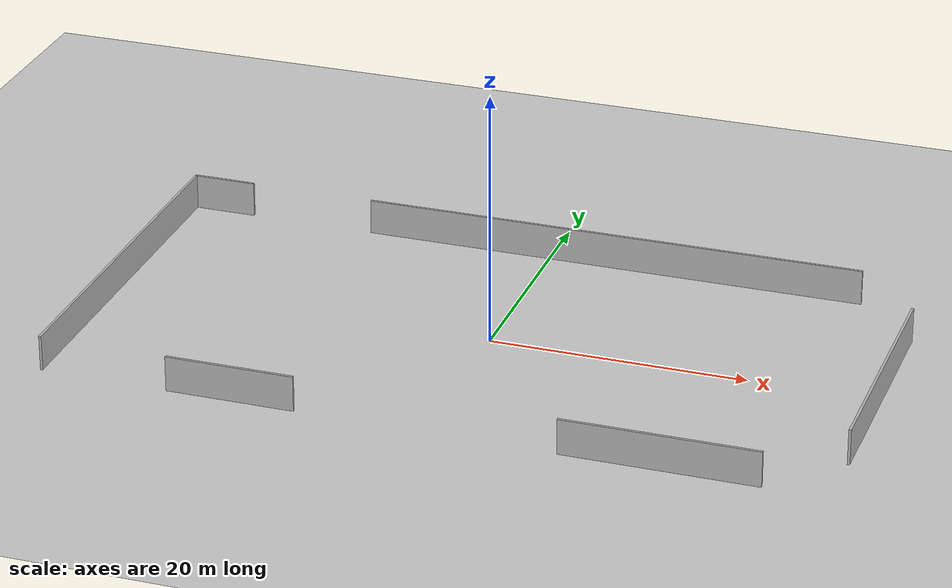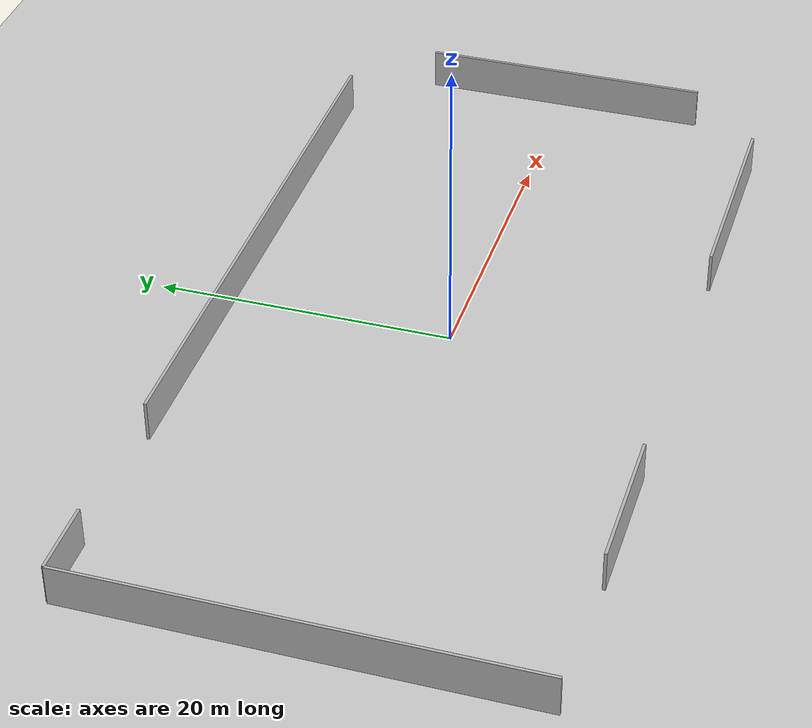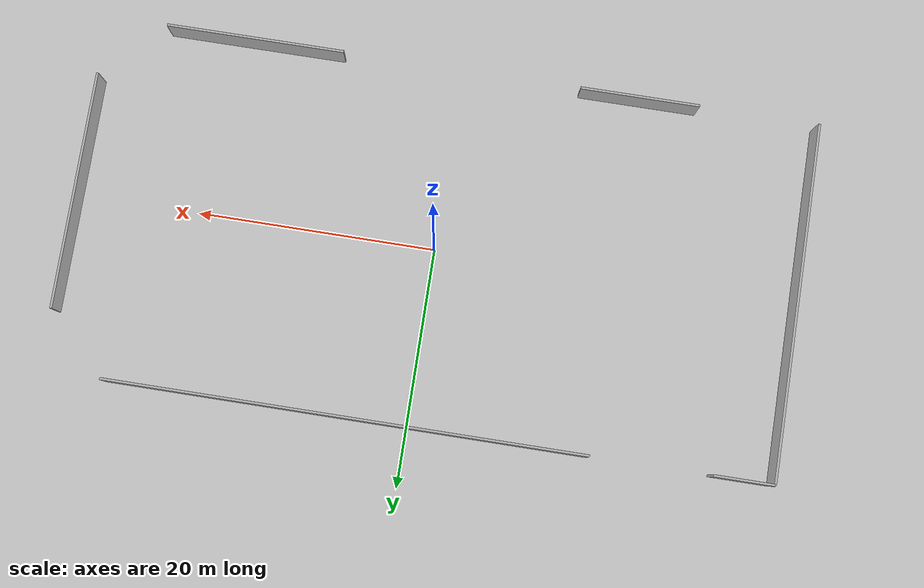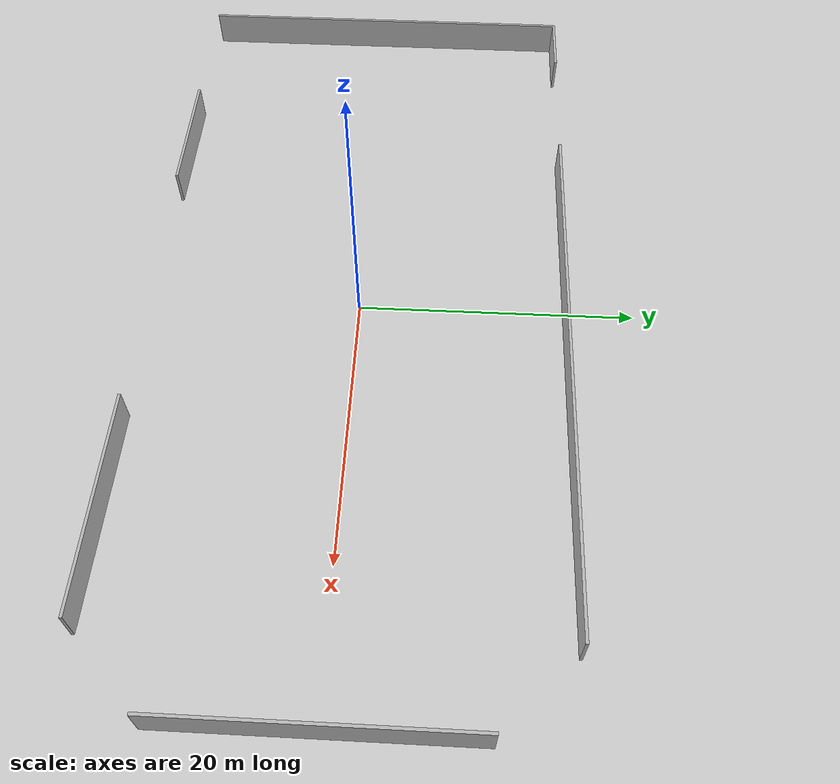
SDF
<?xml version="1.0" ?>
<sdf version="1.5">
  <world name="default">
    <include>
      <uri>model://ground_plane</uri>
    </include>
    <include>
      <uri>model://sun</uri>
    </include>

    <model name="airport_centered_walls">
      <static>1</static>
      <link name="walls_link">
        <collision name="wall_1_collision">
          <pose frame=''>-15 -15 1.4 0 0 0</pose>
          <geometry><box><size>10 0.2 2.8</size></box></geometry>
        </collision>
        <visual name="wall_1_visual">
          <pose frame=''>-15 -15 1.4 0 0 0</pose>
          <geometry><box><size>10 0.2 2.8</size></box></geometry>
        </visual>

        <collision name="wall_2_collision">
          <pose frame=''>-30 0 1.4 0 0 1.57</pose>
          <geometry><box><size>30 0.2 2.8</size></box></geometry>
        </collision>
        <visual name="wall_2_visual">
          <pose frame=''>-30 0 1.4 0 0 1.57</pose>
          <geometry><box><size>30 0.2 2.8</size></box></geometry>
        </visual>

        <collision name="wall_3_collision">
          <pose frame=''>5 15 1.4 0 0 0</pose>
          <geometry><box><size>40 0.2 2.8</size></box></geometry>
        </collision>
        <visual name="wall_3_visual">
          <pose frame=''>5 15 1.4 0 0 0</pose>
          <geometry><box><size>40 0.2 2.8</size></box></geometry>
        </visual>

        <collision name="wall_4_collision">
          <pose frame=''>30 0 1.4 0 0 1.57</pose>
          <geometry><box><size>20 0.2 2.8</size></box></geometry>
        </collision>
        <visual name="wall_4_visual">
          <pose frame=''>30 0 1.4 0 0 1.57</pose>
          <geometry><box><size>20 0.2 2.8</size></box></geometry>
        </visual>

        <collision name="wall_5_collision">
          <pose frame=''>17.5 -15 1.4 0 0 0</pose>
          <geometry><box><size>15 0.2 2.8</size></box></geometry>
        </collision>
        <visual name="wall_5_visual">
          <pose frame=''>17.5 -15 1.4 0 0 0</pose>
          <geometry><box><size>15 0.2 2.8</size></box></geometry>
        </visual>

        <collision name="wall_6_collision">
          <pose frame=''>-27.5 15 1.4 0 0 0</pose>
          <geometry><box><size>5 0.2 2.8</size></box></geometry>
        </collision>
        <visual name="wall_6_visual">
          <pose frame=''>-27.5 15 1.4 0 0 0</pose>
          <geometry><box><size>5 0.2 2.8</size></box></geometry>
        </visual>
      </link>
    </model>

    <plugin name="ActorPosesPlugin" filename="libActorPosesPlugin.so"/>
  </world>
</sdf>
